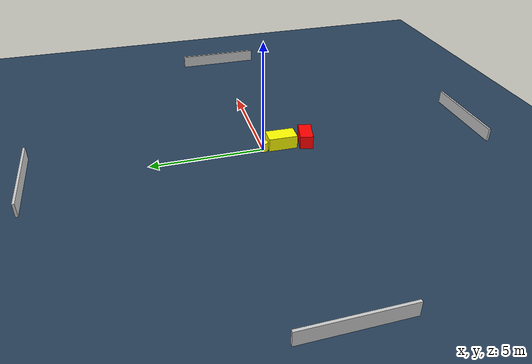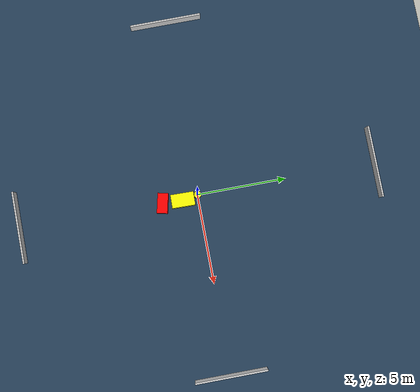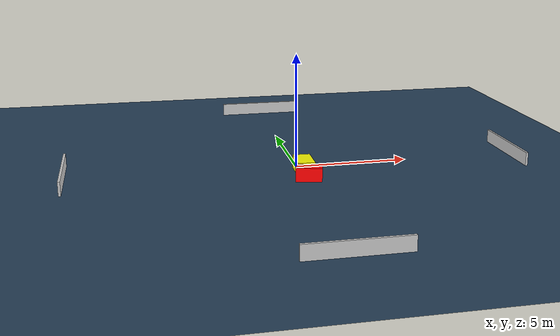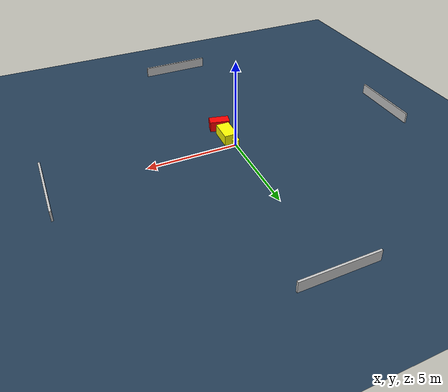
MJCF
<?xml version="1.0" ?>
<mujoco model="generated_environment">
  <option timestep="0.01" integrator="RK4" cone="elliptic"/>
  <default>
    <geom density="1"/>
  </default>
  <asset>
    <texture builtin="gradient" height="3072" name="skybox" rgb1="0.3 0.5 0.7" rgb2="0 0 0" type="skybox" width="512"/>
    <texture builtin="checker" height="300" name="groundplane" rgb1="0.2 0.3 0.4" rgb2="0.1 0.2 0.3" type="2d" width="300"/>
    <material name="groundplane" reflectance="0.2" texrepeat="5 5" texture="groundplane"/>
  </asset>
  <worldbody>
    <light dir="0 0 -1" directional="true" pos="0 0 1.5"/>
    <geom condim="3" friction="0.5 0.005 0.001" material="groundplane" name="floor" pos="0 0 0" size="0 0 0.05" type="plane"/>
    <body name="walls">
      <geom name="wall_1" condim="4" pos="-10.0 0.0 0.3" rgba="0.800000011920929 0.800000011920929 0.800000011920929 1.0" size="0.05 2.0 0.3" type="box"/>
      <geom name="wall_2" condim="4" pos="10.0 0.0 0.3" rgba="0.800000011920929 0.800000011920929 0.800000011920929 1.0" size="0.05 2.0 0.3" type="box"/>
      <geom name="wall_3" condim="4" pos="0.0 -10.0 0.3" rgba="0.800000011920929 0.800000011920929 0.800000011920929 1.0" size="2.0 0.05 0.3" type="box"/>
      <geom name="wall_4" condim="4" pos="0.0 10.0 0.3" rgba="0.800000011920929 0.800000011920929 0.800000011920929 1.0" size="2.0 0.05 0.3" type="box"/>
    </body>
    <body name="robot">
      <joint name="joint_x" type="slide" pos="0 0 0" axis="1 0 0"/>
      <joint name="joint_y" type="slide" pos="0 0 0" axis="0 1 0"/>
      <geom name="robot" type="cylinder" pos="0.0 0.0 0.2" size="0.2 0.2 0.0" mass="5.0" friction="1.0 0.005 0.0001" condim="4" rgba="1.0 1.0 0.0 1.0"/>
    </body>
    <body name="obstacle_1_movable">
      <geom name="obstacle_1_movable" condim="4" pos="0.152066277435564 -0.856658661308727 0.3" euler="0 0 88.83613440543743" friction="0.0 0.005 0.001" rgba="1.0 1.0 0.0 1.0" size="0.6425819768376189 0.372985564129238 0.3" type="box" mass="0.1"/>
      <joint type="free"/>
    </body>
    <body name="obstacle_2_static">
      <geom name="obstacle_2_static" condim="4" pos="0.12617215650014524 -1.9850846256027341 0.3" euler="0 0 257.05215912662436" friction="0.0 0.005 0.001" rgba="1.0 0.0 0.0 1.0" size="0.28960126710173056 0.5549260724169899 0.3" type="box"/>
    </body>
  </worldbody>
  <actuator>
    <motor name="actuator_x" joint="joint_x" gear="1" ctrlrange="-1 1"/>
    <motor name="actuator_y" joint="joint_y" gear="1" ctrlrange="-1 1"/>
  </actuator>
</mujoco>
